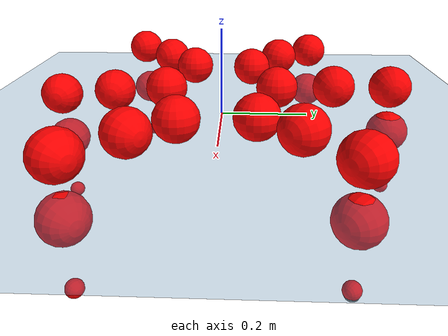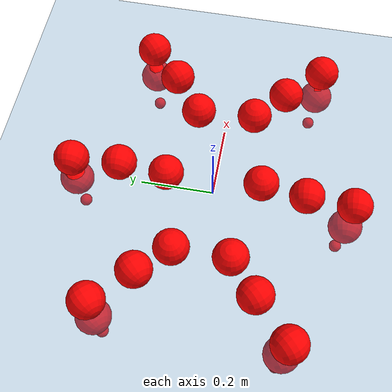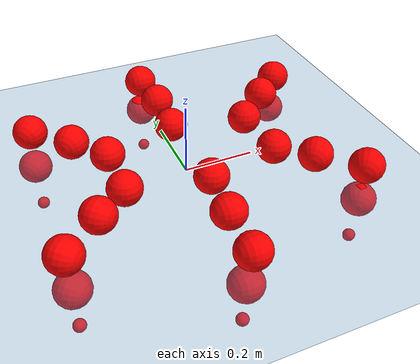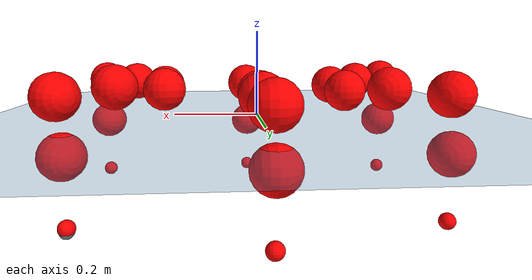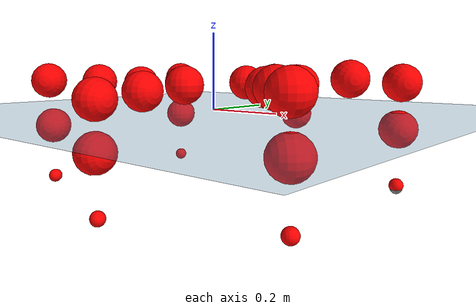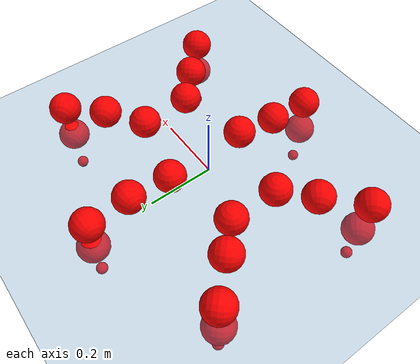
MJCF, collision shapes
<mujoco model="Golem">
  <compiler angle="radian" assetdir="assets" balanceinertia="true" inertiafromgeom="false"/>

  <option timestep="0.005" density="1.2" viscosity="2e-05"/>

  <size nkey="1"/>

  <visual>
    <quality shadowsize="8192"/>
    <map shadowclip="0.5"/>
  </visual>

  <default>
    <default class="/">
      <joint armature="0.01" damping="0.01" frictionloss="0.01"/>
      <geom contype="0" conaffinity="0" group="1" solref="-1000 -80"/>
      <site size="0.01 0.005 0.005" group="5"/>
      <general forcelimited="true" biastype="affine" gainprm="25" biasprm="0 -25 -0.5"/>
      <default class="visual">
        <geom type="mesh" group="2"/>
      </default>
      <default class="collision">
        <geom group="3"/>
      </default>
      <default class="foot">
        <geom size="0.01 0 0" condim="6" group="4" priority="1" solimp="0.015 1 0.01"/>
      </default>
      <default class="reward_collision_sphere">
        <geom group="5" rgba="1 0 0 1"/>
      </default>
    </default>
  </default>

  <asset>
    <texture type="skybox" colorspace="auto" name="//unnamed_texture_0" builtin="gradient" rgb1="0.95 0.95 0.95" rgb2="0.95 0.95 0.95" width="100" height="600"/>
    <texture type="2d" colorspace="auto" name="texplane" builtin="checker" rgb1="0.345 0.575 0.748" rgb2="0.345 0.575 0.748" markrgb="1 1 1" width="512" height="512"/>
    <material name="MatPlane" class="/" texture="texplane" texuniform="true" texrepeat="2 2" specular="0.9"/>
    <mesh name="body" class="/" file="body.stl" scale="0.001 0.001 0.001"/>
    <mesh name="coxa" class="/" file="coxa.stl" scale="0.001 0.001 0.001"/>
    <mesh name="femur" class="/" file="femur.stl" scale="0.001 0.001 0.001"/>
    <mesh name="tibia" class="/" file="tibia.stl" scale="0.001 0.001 0.001"/>
    <mesh name="tarsus" class="/" file="tarsus.stl" scale="0.001 0.001 0.001"/>
  </asset>

  <worldbody>
    <geom name="floor" class="/" size="100 100 0.125" type="plane" group="0" material="MatPlane"/>
    <light name="toplight_shadow" class="/" pos="0 0 5" dir="0.0990148 0.0990148 -0.990148" type="directional" ambient="0.04 0.04 0.04" diffuse="0.55 0.55 0.55" specular="0.12 0.12 0.12"/>
    <light name="toplight_fill" class="/" pos="0 0 5" dir="0.0990148 0.0990148 -0.990148" type="directional" castshadow="false" ambient="0.04 0.04 0.04" diffuse="0.3 0.3 0.3" specular="0.08 0.08 0.08"/>
    <body name="trunk" pos="0.00736839 0.00156378 0.00154469" quat="0.999986 0.00440441 0.000989662 0.00290601">
      <inertial pos="0.000406188 -0.0119021 -0.0110895" quat="0.999662 -0.00741656 -0.0219131 0.0118783" mass="6.68668" diaginertia="0.0471627 0.0247902 0.0132177"/>
      <joint name="//unnamed_joint_0" type="free"/>
      <geom name="//unnamed_geom_1" class="/" pos="0 0 0.0663375" quat="1 0 0 0" type="mesh" rgba="0.9 0.9 0.9 1" mesh="body"/>
      <site name="imu" class="/" pos="0.164799 -0.0440505 0.126537" size="0.0118962"/>
      <camera name="track" class="/" pos="0 -2.39447 0" quat="0.707107 0.707107 0 0" mode="trackcom"/>
      <camera name="ego_camera" class="/" pos="0.173562 0 0.103652" quat="-0.5 -0.5 0.5 0.5"/>
      <body name="coxa_RR" pos="-0.235817 -0.108531 0.0642087" quat="0.379427 -0.00304338 0.00018151 -0.925216">
        <inertial pos="-0.00623433 -0.00376026 -0.0041292" quat="0.998163 0.0198737 -0.0441041 0.0364661" mass="0.252719" diaginertia="0.03681 0.0207914 0.0107382"/>
        <joint name="coxa_joint_RR" class="/" pos="0 0 0" axis="-0.0031447 0.000375885 -0.999995" range="-3.12244 3.3788" armature="0.00496456" damping="0" frictionloss="0.0112323"/>
        <geom name="//unnamed_geom_2" class="/" type="mesh" rgba="0.2 0.2 0.2 1" mesh="coxa"/>
        <geom name="//unnamed_geom_3" class="reward_collision_sphere" size="0.0475847" pos="-0.0400527 0 0"/>
        <body name="femur_RR" pos="0.0753932 -0.00956702 0.00561135" quat="0.498412 -0.499708 0.50236 0.499512">
          <inertial pos="-0.0101363 -0.00362616 -0.00167524" quat="0.998817 -0.025634 -0.0261012 -0.032047" mass="0.347279" diaginertia="0.0431452 0.0251193 0.0121631"/>
          <joint name="femur_joint_RR" class="/" pos="0 0 0" axis="-0.0123893 -0.00164347 -0.999922" range="-3.24895 3.25935" armature="0.0115538" damping="0.0617463" frictionloss="0.00977932"/>
          <geom name="//unnamed_geom_4" class="/" type="mesh" rgba="0.9 0.9 0.9 1" mesh="femur"/>
          <geom name="//unnamed_geom_5" class="reward_collision_sphere" size="0.0475847"/>
          <body name="tibia_RR" pos="-0.00308706 -0.140336 -0.00585102" quat="-0.00117849 0.999997 0.00213029 -0.000438543">
            <inertial pos="0.00765371 0.00122841 0.00140176" quat="0.999829 0.010227 0.00369101 0.0149839" mass="0.292027" diaginertia="0.0414746 0.0247345 0.0110162"/>
            <joint name="tibia_joint_RR" class="/" pos="0 0 0" axis="-0.0402004 0.0152441 0.999075" range="-3.07374 3.10256" armature="0.0120677" damping="0.0168967" frictionloss="0.01295"/>
            <geom name="//unnamed_geom_6" class="/" type="mesh" rgba="0.2 0.2 0.2 1" mesh="tibia"/>
            <geom name="//unnamed_geom_7" class="reward_collision_sphere" size="0.0475847"/>
            <body name="tarsus_RR" pos="0.125977 -0.00706097 0.000551316" quat="0.999996 -0.000370231 -0.00183102 0.0022062">
              <inertial pos="0.0844349 0.000162916 0.00369117" quat="0.502159 0.500752 0.503668 0.493359" mass="0.291803" diaginertia="0.0370701 0.0210541 0.0106271"/>
              <joint name="tarsus_joint_RR" class="/" pos="0 0 0" axis="1.44135e-05 0.000199676 1" stiffness="0.00345003" range="-3.13306 3.14972" armature="0.0121931" damping="0.0322453" frictionloss="0.0167896"/>
              <geom name="//unnamed_geom_8" class="/" type="mesh" rgba="0.9 0.9 0.9 1" mesh="tarsus"/>
              <geom name="foot_1" class="foot" size="0.0114338" pos="0.14953 0 0" quat="0 -0.707107 0 0.707107"/>
              <geom name="//unnamed_geom_10" class="reward_collision_sphere" size="0.0475847"/>
              <geom name="//unnamed_geom_11" class="reward_collision_sphere" size="0.0178442" pos="0.143522 0 0"/>
              <site name="foot_1" class="foot" pos="0.14953 0 0" quat="0 -0.707107 0 0.707107" size="0.0118962"/>
            </body>
          </body>
        </body>
      </body>
      <body name="coxa_RM" pos="0.0101687 -0.167595 0.0678737" quat="0.707768 0.000249439 -0.00086831 -0.706445">
        <inertial pos="0.00978469 0.00163797 0.000826965" quat="0.999961 -0.00540615 0.00572455 -0.00405238" mass="0.297455" diaginertia="0.0389616 0.0202577 0.0106683"/>
        <joint name="coxa_joint_RM" class="/" pos="0 0 0" axis="0.000701462 0.0101633 -0.999948" range="-3.30105 3.11179" armature="0.00726999" damping="0" frictionloss="0.0108467"/>
        <geom name="//unnamed_geom_12" class="/" type="mesh" rgba="0.2 0.2 0.2 1" mesh="coxa"/>
        <geom name="//unnamed_geom_13" class="reward_collision_sphere" size="0.0475847" pos="-0.0400527 0 0"/>
        <body name="femur_RM" pos="0.0833935 -0.0113735 -0.00984677" quat="0.500075 -0.4982 0.499829 0.501889">
          <inertial pos="0.000717088 0.0051797 -0.00311326" quat="0.998384 -0.0471578 0.0201847 0.0244542" mass="0.367533" diaginertia="0.0513846 0.028899 0.0139475"/>
          <joint name="femur_joint_RM" class="/" pos="0 0 0" axis="-0.00145889 0.000604139 -0.999999" range="-2.9062 3.17164" armature="0.0129723" damping="0.00518394" frictionloss="0.0119866"/>
          <geom name="//unnamed_geom_14" class="/" type="mesh" rgba="0.9 0.9 0.9 1" mesh="femur"/>
          <geom name="//unnamed_geom_15" class="reward_collision_sphere" size="0.0475847"/>
          <body name="tibia_RM" pos="0.00977267 -0.128559 -0.00193211" quat="-0.0036477 0.999982 0.000413896 -0.00467018">
            <inertial pos="0.00697323 -0.00104696 0.00145115" quat="0.999241 -0.000701908 0.0297651 -0.025138" mass="0.333856" diaginertia="0.0410075 0.0272763 0.0135637"/>
            <joint name="tibia_joint_RM" class="/" pos="0 0 0" axis="0.00011747 -0.0100263 0.99995" stiffness="0.0504919" range="-3.14584 3.1413" armature="0.0116744" damping="0.0414623" frictionloss="0.0127694"/>
            <geom name="//unnamed_geom_16" class="/" type="mesh" rgba="0.2 0.2 0.2 1" mesh="tibia"/>
            <geom name="//unnamed_geom_17" class="reward_collision_sphere" size="0.0475847"/>
            <body name="tarsus_RM" pos="0.115829 -0.00232112 0.00785593" quat="0.999988 0.000451254 0.00464013 -0.00155924">
              <inertial pos="0.0781606 6.17769e-05 0.000927587" quat="0.50753 0.497045 0.504673 0.490576" mass="0.34257" diaginertia="0.041566 0.0250563 0.0106457"/>
              <joint name="tarsus_joint_RM" class="/" pos="0 0 0" axis="0.0451206 0.000326927 0.998981" range="-3.00037 2.90244" armature="0.0153507" damping="0.000989897" frictionloss="0.0189252"/>
              <geom name="//unnamed_geom_18" class="/" type="mesh" rgba="0.9 0.9 0.9 1" mesh="tarsus"/>
              <geom name="foot_2" class="foot" size="0.0110614" pos="0.14953 0 0" quat="0 -0.707107 0 0.707107"/>
              <geom name="//unnamed_geom_20" class="reward_collision_sphere" size="0.0475847"/>
              <geom name="//unnamed_geom_21" class="reward_collision_sphere" size="0.0178442" pos="0.143522 0 0"/>
              <site name="foot_2" class="foot" pos="0.14953 0 0" quat="0 -0.707107 0 0.707107" size="0.0118962"/>
            </body>
          </body>
        </body>
      </body>
      <body name="coxa_RF" pos="0.247481 -0.108022 0.0676772" quat="0.925508 7.91985e-05 -0.00239181 -0.37872">
        <inertial pos="-0.0101348 -0.0104118 0.000287055" quat="0.999962 0.00141013 0.00614859 0.00595306" mass="0.341172" diaginertia="0.0435136 0.0268261 0.0123894"/>
        <joint name="coxa_joint_RF" class="/" pos="0 0 0" axis="0.00247359 -0.0192931 -0.999811" stiffness="0.0582905" range="-3.22488 3.34843" armature="0.0138765" damping="0" frictionloss="0.0122272"/>
        <geom name="//unnamed_geom_22" class="/" type="mesh" rgba="0.2 0.2 0.2 1" mesh="coxa"/>
        <geom name="//unnamed_geom_23" class="reward_collision_sphere" size="0.0475847" pos="-0.0400527 0 0"/>
        <body name="femur_RF" pos="0.0736091 0.00136554 0.00444949" quat="0.498546 -0.500357 0.497429 0.503646">
          <inertial pos="-0.000900929 0.00555004 -0.0113247" quat="0.998983 -0.00438104 0.0447395 -0.00336777" mass="0.353492" diaginertia="0.0479845 0.0278847 0.0154095"/>
          <joint name="femur_joint_RF" class="/" pos="0 0 0" axis="-0.0248341 0.0525043 -0.998312" stiffness="0.00148074" range="-3.15682 3.24654" armature="0.00431784" damping="0.0209422" frictionloss="0.00725923"/>
          <geom name="//unnamed_geom_24" class="/" type="mesh" rgba="0.9 0.9 0.9 1" mesh="femur"/>
          <geom name="//unnamed_geom_25" class="reward_collision_sphere" size="0.0475847"/>
          <body name="tibia_RF" pos="0.000500723 -0.133886 7.28903e-05" quat="0.000807769 0.999997 0.0023048 -0.000487202">
            <inertial pos="-0.00353617 -0.000556203 -0.00177714" quat="0.999179 0.0387046 -0.0104043 0.00599159" mass="0.373002" diaginertia="0.0467233 0.0276787 0.0111824"/>
            <joint name="tibia_joint_RF" class="/" pos="0 0 0" axis="-0.00510911 -0.00245659 0.999984" stiffness="0.0289662" range="-3.12703 2.92969" armature="0.0121839" damping="0.0213347" frictionloss="0.0102916"/>
            <geom name="//unnamed_geom_26" class="/" type="mesh" rgba="0.2 0.2 0.2 1" mesh="tibia"/>
            <geom name="//unnamed_geom_27" class="reward_collision_sphere" size="0.0475847"/>
            <body name="tarsus_RF" pos="0.117245 0.00108532 0.000396109" quat="0.999983 -0.00365934 0.00443903 8.80512e-05">
              <inertial pos="0.0824273 0.000365706 -0.00166633" quat="0.526342 0.485205 0.490459 0.496982" mass="0.363856" diaginertia="0.0464567 0.0259558 0.0143941"/>
              <joint name="tarsus_joint_RF" class="/" pos="0 0 0" axis="-0.0102186 0.00222237 0.999945" range="-3.12209 3.10906" armature="0.0123872" damping="0.0178661" frictionloss="0.00835529"/>
              <geom name="//unnamed_geom_28" class="/" type="mesh" rgba="0.9 0.9 0.9 1" mesh="tarsus"/>
              <geom name="foot_3" class="foot" size="0.0076578" pos="0.14953 0 0" quat="0 -0.707107 0 0.707107"/>
              <geom name="//unnamed_geom_30" class="reward_collision_sphere" size="0.0475847"/>
              <geom name="//unnamed_geom_31" class="reward_collision_sphere" size="0.0178442" pos="0.143522 0 0"/>
              <site name="foot_3" class="foot" pos="0.14953 0 0" quat="0 -0.707107 0 0.707107" size="0.0118962"/>
            </body>
          </body>
        </body>
      </body>
      <body name="coxa_LR" pos="-0.233752 0.100188 0.0608594" quat="0.381981 -0.000874237 0.00458761 0.924159">
        <inertial pos="0.00075379 -0.00183256 -0.00239268" quat="0.999961 0.00873575 -0.00136977 -0.00021793" mass="0.362273" diaginertia="0.0482826 0.0252519 0.0140127"/>
        <joint name="coxa_joint_LR" class="/" pos="0 0 0" axis="0.0407635 -0.0217111 -0.998933" stiffness="0.0173515" range="-3.31228 3.13689" armature="0.0142189" damping="0" frictionloss="0.0129348"/>
        <geom name="//unnamed_geom_32" class="/" type="mesh" rgba="0.2 0.2 0.2 1" mesh="coxa"/>
        <geom name="//unnamed_geom_33" class="reward_collision_sphere" size="0.0475847" pos="-0.0400527 0 0"/>
        <body name="femur_LR" pos="0.069372 0.000539348 0.0102721" quat="0.50045 -0.500425 0.498648 0.500475">
          <inertial pos="0.000713018 -0.00042908 -0.00467288" quat="0.999841 0.00730313 -0.000185377 0.016247" mass="0.325892" diaginertia="0.0400794 0.0263014 0.0111272"/>
          <joint name="femur_joint_LR" class="/" pos="0 0 0" axis="-0.000177032 -7.161e-06 1" stiffness="0.0347405" range="-2.94298 2.9464" armature="0.0109245" damping="0.055017" frictionloss="0.0131298"/>
          <geom name="//unnamed_geom_34" class="/" type="mesh" rgba="0.9 0.9 0.9 1" mesh="femur"/>
          <geom name="//unnamed_geom_35" class="reward_collision_sphere" size="0.0475847"/>
          <body name="tibia_LR" pos="0.00397254 -0.134356 -0.00157597" quat="0.000219808 1 0.000899267 -9.65916e-05">
            <inertial pos="0.0117039 0.00230139 0.0103524" quat="0.999999 0.0009096 0.000492155 -0.000170703" mass="0.336221" diaginertia="0.0432186 0.0217006 0.0129021"/>
            <joint name="tibia_joint_LR" class="/" pos="0 0 0" axis="0.00668542 -0.00109376 -0.999977" stiffness="0.0310357" range="-3.34567 2.97882" armature="0.0149251" damping="0" frictionloss="0.0136643"/>
            <geom name="//unnamed_geom_36" class="/" type="mesh" rgba="0.2 0.2 0.2 1" mesh="tibia"/>
            <geom name="//unnamed_geom_37" class="reward_collision_sphere" size="0.0475847"/>
            <body name="tarsus_LR" pos="0.122368 0.00476401 -0.00196075" quat="1 -0.000563129 -0.000108414 -0.000668763">
              <inertial pos="0.0787063 0.00233506 -0.00193682" quat="0.499032 0.506467 0.496066 0.498374" mass="0.311568" diaginertia="0.0397733 0.0198254 0.0105841"/>
              <joint name="tarsus_joint_LR" class="/" pos="0 0 0" axis="-0.0142637 0.0506714 -0.998614" range="-3.14108 3.29814" armature="0.0122314" damping="0.0210512" frictionloss="0.00722297"/>
              <geom name="//unnamed_geom_38" class="/" type="mesh" rgba="0.9 0.9 0.9 1" mesh="tarsus"/>
              <geom name="foot_4" class="foot" size="0.0109505" pos="0.14953 0 0" quat="0.707107 0 -0.707107 0"/>
              <geom name="//unnamed_geom_40" class="reward_collision_sphere" size="0.0475847"/>
              <geom name="//unnamed_geom_41" class="reward_collision_sphere" size="0.0178442" pos="0.143522 0 0"/>
              <site name="foot_4" class="foot" pos="0.14953 0 0" quat="0.707107 0 -0.707107 0" size="0.0118962"/>
            </body>
          </body>
        </body>
      </body>
      <body name="coxa_LM" pos="0.00017704 0.167085 0.0649576" quat="0.705844 0.000251205 0.000868858 0.708367">
        <inertial pos="-0.0102425 -0.0114531 -0.00242724" quat="0.999998 0.000758639 -0.00138488 -0.000857003" mass="0.332487" diaginertia="0.0409924 0.0244992 0.0117898"/>
        <joint name="coxa_joint_LM" class="/" pos="0 0 0" axis="0.0015569 0.00473535 -0.999988" stiffness="0.0386747" range="-3.25887 3.25989" armature="0.00628167" damping="0.0417583" frictionloss="0.00848346"/>
        <geom name="//unnamed_geom_42" class="/" type="mesh" rgba="0.2 0.2 0.2 1" mesh="coxa"/>
        <geom name="//unnamed_geom_43" class="reward_collision_sphere" size="0.0475847" pos="-0.0400527 0 0"/>
        <body name="femur_LM" pos="0.0890217 -0.0066757 0.00389963" quat="0.497324 -0.501297 0.503915 0.497433">
          <inertial pos="0.00664509 -0.00572019 0.000170127" quat="0.999201 0.000581227 0.0399442 -0.0012738" mass="0.328585" diaginertia="0.0374679 0.0261565 0.0115387"/>
          <joint name="femur_joint_LM" class="/" pos="0 0 0" axis="0.00875595 -0.00529448 0.999948" range="-3.20807 3.1452" armature="0.0186965" damping="0.0423885" frictionloss="0.0126581"/>
          <geom name="//unnamed_geom_44" class="/" type="mesh" rgba="0.9 0.9 0.9 1" mesh="femur"/>
          <geom name="//unnamed_geom_45" class="reward_collision_sphere" size="0.0475847"/>
          <body name="tibia_LM" pos="0.00247857 -0.130272 0.00740003" quat="0.000420601 1 0.000267294 0.00028089">
            <inertial pos="-0.00243168 -0.00949473 -0.00454127" quat="0.999907 0.000289134 0.0126436 0.00515273" mass="0.354474" diaginertia="0.0466218 0.0235542 0.0111043"/>
            <joint name="tibia_joint_LM" class="/" pos="0 0 0" axis="0.0301132 0.000273172 -0.999546" stiffness="0.0102112" range="-3.08197 2.99035" armature="0.0109256" damping="0.046027" frictionloss="0.0154576"/>
            <geom name="//unnamed_geom_46" class="/" type="mesh" rgba="0.2 0.2 0.2 1" mesh="tibia"/>
            <geom name="//unnamed_geom_47" class="reward_collision_sphere" size="0.0475847"/>
            <body name="tarsus_LM" pos="0.110089 0.00452184 -0.00229954" quat="1 0.000277958 0.00024313 0.000576599">
              <inertial pos="0.0800499 0.00238612 0.000745864" quat="0.5089 0.496524 0.48031 0.513601" mass="0.2536" diaginertia="0.0352595 0.0218661 0.011753"/>
              <joint name="tarsus_joint_LM" class="/" pos="0 0 0" axis="0.0195118 0.00171966 -0.999808" range="-3.14799 3.27739" armature="0.0104724" damping="0" frictionloss="0.0118666"/>
              <geom name="//unnamed_geom_48" class="/" type="mesh" rgba="0.9 0.9 0.9 1" mesh="tarsus"/>
              <geom name="foot_5" class="foot" size="0.0107666" pos="0.14953 0 0" quat="0.707107 0 -0.707107 0"/>
              <geom name="//unnamed_geom_50" class="reward_collision_sphere" size="0.0475847"/>
              <geom name="//unnamed_geom_51" class="reward_collision_sphere" size="0.0178442" pos="0.143522 0 0"/>
              <site name="foot_5" class="foot" pos="0.14953 0 0" quat="0.707107 0 -0.707107 0" size="0.0118962"/>
            </body>
          </body>
        </body>
      </body>
      <body name="coxa_LF" pos="0.236838 0.104463 0.0681141" quat="0.92394 0.000230247 -0.000297607 0.382538">
        <inertial pos="0.0016021 -0.00142926 -0.000363106" quat="1 -0.000442403 0.000198485 0.000230701" mass="0.375886" diaginertia="0.0464472 0.0244585 0.0119569"/>
        <joint name="coxa_joint_LF" class="/" pos="0 0 0" axis="-0.0200201 -0.0496457 -0.998566" range="-3.11561 3.22287" armature="0.0101119" damping="0.0214405" frictionloss="0.012018"/>
        <geom name="//unnamed_geom_52" class="/" type="mesh" rgba="0.2 0.2 0.2 1" mesh="coxa"/>
        <geom name="//unnamed_geom_53" class="reward_collision_sphere" size="0.0475847" pos="-0.0400527 0 0"/>
        <body name="femur_LF" pos="0.082836 -0.0115597 0.0121" quat="0.499776 -0.499644 0.500211 0.500368">
          <inertial pos="0.0090562 -0.00423541 0.00174918" quat="0.999963 -0.00624524 -0.0059249 -0.000767249" mass="0.326196" diaginertia="0.045817 0.0289385 0.0131188"/>
          <joint name="femur_joint_LF" class="/" pos="0 0 0" axis="-0.0373487 -0.0231505 0.999034" range="-3.13401 3.33754" armature="0.0167445" damping="0.00899526" frictionloss="0.01138"/>
          <geom name="//unnamed_geom_54" class="/" type="mesh" rgba="0.9 0.9 0.9 1" mesh="femur"/>
          <geom name="//unnamed_geom_55" class="reward_collision_sphere" size="0.0475847"/>
          <body name="tibia_LF" pos="0.0103213 -0.129444 -0.00434046" quat="0.000162531 1 0.000865722 -0.000207561">
            <inertial pos="-0.00229698 -0.00449005 0.000202024" quat="0.998739 -0.00429514 0.0466789 0.0179592" mass="0.347433" diaginertia="0.042758 0.0241305 0.011233"/>
            <joint name="tibia_joint_LF" class="/" pos="0 0 0" axis="-0.000115249 -0.00630826 -0.99998" range="-3.10176 3.24288" armature="0.018981" damping="0.0282601" frictionloss="0.0116891"/>
            <geom name="//unnamed_geom_56" class="/" type="mesh" rgba="0.2 0.2 0.2 1" mesh="tibia"/>
            <geom name="//unnamed_geom_57" class="reward_collision_sphere" size="0.0475847"/>
            <body name="tarsus_LF" pos="0.115936 -0.00450817 -0.00367473" quat="0.999983 0.0044509 0.00389135 -6.89891e-05">
              <inertial pos="0.072044 0.00963006 0.00141213" quat="0.504074 0.503675 0.49596 0.49623" mass="0.377002" diaginertia="0.047761 0.0269291 0.0131976"/>
              <joint name="tarsus_joint_LF" class="/" pos="0 0 0" axis="0.0205934 0.0425509 -0.998882" range="-3.3225 3.15441" armature="0.0120637" damping="0" frictionloss="0.0108508"/>
              <geom name="//unnamed_geom_58" class="/" type="mesh" rgba="0.9 0.9 0.9 1" mesh="tarsus"/>
              <geom name="foot_6" class="foot" size="0.0155199" pos="0.14953 0 0" quat="0.707107 0 -0.707107 0"/>
              <geom name="//unnamed_geom_60" class="reward_collision_sphere" size="0.0475847"/>
              <geom name="//unnamed_geom_61" class="reward_collision_sphere" size="0.0178442" pos="0.143522 0 0"/>
              <site name="foot_6" class="foot" pos="0.14953 0 0" quat="0.707107 0 -0.707107 0" size="0.0118962"/>
            </body>
          </body>
        </body>
      </body>
    </body>
  </worldbody>

  <contact>
    <pair class="/" geom1="floor" geom2="foot_1" name="//unnamed_contact_0"/>
    <pair class="/" geom1="floor" geom2="foot_2" name="//unnamed_contact_1"/>
    <pair class="/" geom1="floor" geom2="foot_3" name="//unnamed_contact_2"/>
    <pair class="/" geom1="floor" geom2="foot_4" name="//unnamed_contact_3"/>
    <pair class="/" geom1="floor" geom2="foot_5" name="//unnamed_contact_4"/>
    <pair class="/" geom1="floor" geom2="foot_6" name="//unnamed_contact_5"/>
  </contact>

  <actuator>
    <general name="coxa_joint_RR" class="/" joint="coxa_joint_RR" forcerange="-9.00895 9.00895" gainprm="24.7923" biasprm="0 -24.7923 -0.66179"/>
    <general name="femur_joint_RR" class="/" joint="femur_joint_RR" forcerange="-8.85533 8.85533" gainprm="24.7923" biasprm="0 -24.7923 -0.66179"/>
    <general name="tibia_joint_RR" class="/" joint="tibia_joint_RR" forcerange="-9.2241 9.2241" gainprm="24.7923" biasprm="0 -24.7923 -0.66179"/>
    <general name="tarsus_joint_RR" class="/" joint="tarsus_joint_RR" forcerange="-9.22624 9.22624" gainprm="24.7923" biasprm="0 -24.7923 -0.66179"/>
    <general name="coxa_joint_RM" class="/" joint="coxa_joint_RM" forcerange="-9.36944 9.36944" gainprm="24.7923" biasprm="0 -24.7923 -0.66179"/>
    <general name="femur_joint_RM" class="/" joint="femur_joint_RM" forcerange="-11.3021 11.3021" gainprm="24.7923" biasprm="0 -24.7923 -0.66179"/>
    <general name="tibia_joint_RM" class="/" joint="tibia_joint_RM" forcerange="-8.53767 8.53767" gainprm="24.7923" biasprm="0 -24.7923 -0.66179"/>
    <general name="tarsus_joint_RM" class="/" joint="tarsus_joint_RM" forcerange="-7.77338 7.77338" gainprm="24.7923" biasprm="0 -24.7923 -0.66179"/>
    <general name="coxa_joint_RF" class="/" joint="coxa_joint_RF" forcerange="-11.4884 11.4884" gainprm="24.7923" biasprm="0 -24.7923 -0.66179"/>
    <general name="femur_joint_RF" class="/" joint="femur_joint_RF" forcerange="-11.1437 11.1437" gainprm="24.7923" biasprm="0 -24.7923 -0.66179"/>
    <general name="tibia_joint_RF" class="/" joint="tibia_joint_RF" forcerange="-6.36743 6.36743" gainprm="24.7923" biasprm="0 -24.7923 -0.66179"/>
    <general name="tarsus_joint_RF" class="/" joint="tarsus_joint_RF" forcerange="-7.43852 7.43852" gainprm="24.7923" biasprm="0 -24.7923 -0.66179"/>
    <general name="coxa_joint_LR" class="/" joint="coxa_joint_LR" forcerange="-8.445 8.445" gainprm="24.7923" biasprm="0 -24.7923 -0.66179"/>
    <general name="femur_joint_LR" class="/" joint="femur_joint_LR" forcerange="-10.3365 10.3365" gainprm="24.7923" biasprm="0 -24.7923 -0.66179"/>
    <general name="tibia_joint_LR" class="/" joint="tibia_joint_LR" forcerange="-12.1188 12.1188" gainprm="24.7923" biasprm="0 -24.7923 -0.66179"/>
    <general name="tarsus_joint_LR" class="/" joint="tarsus_joint_LR" forcerange="-5.00822 5.00822" gainprm="24.7923" biasprm="0 -24.7923 -0.66179"/>
    <general name="coxa_joint_LM" class="/" joint="coxa_joint_LM" forcerange="-7.15937 7.15937" gainprm="24.7923" biasprm="0 -24.7923 -0.66179"/>
    <general name="femur_joint_LM" class="/" joint="femur_joint_LM" forcerange="-9.16046 9.16046" gainprm="24.7923" biasprm="0 -24.7923 -0.66179"/>
    <general name="tibia_joint_LM" class="/" joint="tibia_joint_LM" forcerange="-8.56383 8.56383" gainprm="24.7923" biasprm="0 -24.7923 -0.66179"/>
    <general name="tarsus_joint_LM" class="/" joint="tarsus_joint_LM" forcerange="-9.80285 9.80285" gainprm="24.7923" biasprm="0 -24.7923 -0.66179"/>
    <general name="coxa_joint_LF" class="/" joint="coxa_joint_LF" forcerange="-8.45748 8.45748" gainprm="24.7923" biasprm="0 -24.7923 -0.66179"/>
    <general name="femur_joint_LF" class="/" joint="femur_joint_LF" forcerange="-8.74703 8.74703" gainprm="24.7923" biasprm="0 -24.7923 -0.66179"/>
    <general name="tibia_joint_LF" class="/" joint="tibia_joint_LF" forcerange="-7.7824 7.7824" gainprm="24.7923" biasprm="0 -24.7923 -0.66179"/>
    <general name="tarsus_joint_LF" class="/" joint="tarsus_joint_LF" forcerange="-8.34915 8.34915" gainprm="24.7923" biasprm="0 -24.7923 -0.66179"/>
  </actuator>

  <sensor>
    <gyro site="imu" name="imu_angular_velocity"/>
    <velocimeter site="imu" name="imu_linear_velocity"/>
    <framelinvel objtype="site" objname="foot_1" name="foot_1_global_linear_velocity"/>
    <framelinvel objtype="site" objname="foot_2" name="foot_2_global_linear_velocity"/>
    <framelinvel objtype="site" objname="foot_3" name="foot_3_global_linear_velocity"/>
    <framelinvel objtype="site" objname="foot_4" name="foot_4_global_linear_velocity"/>
    <framelinvel objtype="site" objname="foot_5" name="foot_5_global_linear_velocity"/>
    <framelinvel objtype="site" objname="foot_6" name="foot_6_global_linear_velocity"/>
  </sensor>

  <keyframe>
    <key name="home" qpos="0 0 0.1457 1 0 0 0 0 0 0 0 0 0 0 0 0 0 0 0 0 0 0 0 0 0 0 0 0 0 0 0"/>
  </keyframe>
</mujoco>
